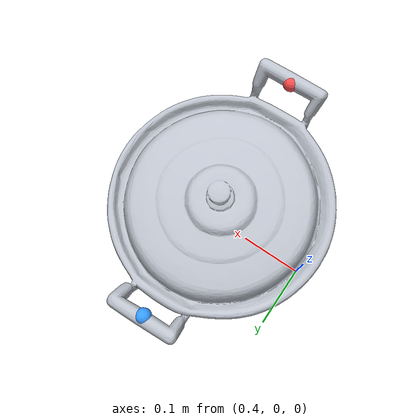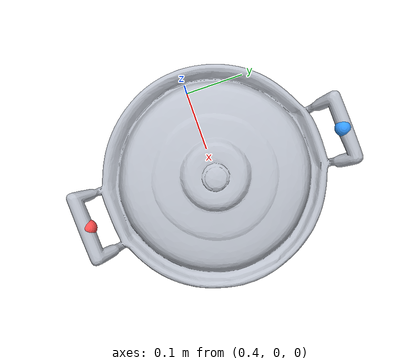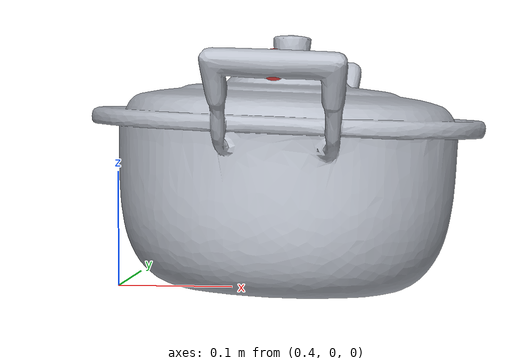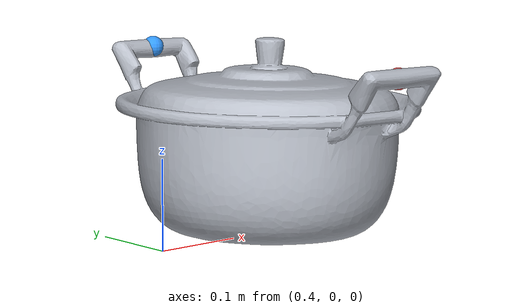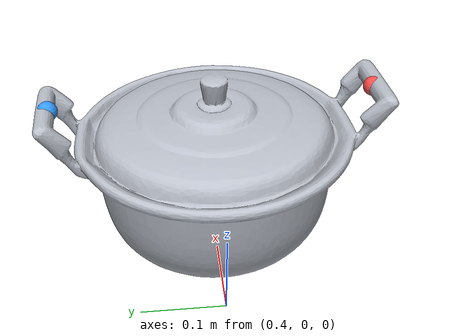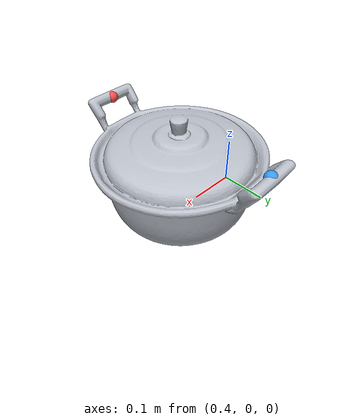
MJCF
<mujoco model="pot_m3">
  <!-- 자동 생성 파일 -- 직접 고치지 말 것.
       results/cocarry/gen_mass_variants.py 가 pot.xml 의 mass 를 x3 한 것이다.
       (pot_visual 의 mass="0" 은 시각 전용이라 그대로 둔다.) -->
  <asset>
    <mesh name="pot_mesh" file="pot.obj"/>
  </asset>

  <worldbody>
    <!-- quat 0.7071 0 0 0.7071 = +90 deg about z: the handles start along +-x in
         the mesh, this turns them to +-y so the left arm (y +0.3) and the right
         arm (y -0.3) each face one handle. -->
    <body name="pot" pos="0.55 0 0.12" quat="0.7071068 0 0 0.7071068">
      <freejoint name="pot_free"/>
      <geom name="pot_visual" type="mesh" mesh="pot_mesh" mass="0"
            contype="0" conaffinity="0" group="2" rgba="0.72 0.74 0.78 1"/>
      <geom name="pot_body_col" group="3" type="cylinder" size="0.145 0.070" pos="0 0 -0.050"
            mass="2.4" contype="1" conaffinity="1" rgba="1 0 0 0.25"/>
      <geom name="pot_lid_col" group="3" type="cylinder" size="0.152 0.018" pos="0 0 0.034"
            mass="0.3" contype="1" conaffinity="1" rgba="1 0 0 0.25"/>
      <geom name="pot_knob_col" group="3" type="sphere" size="0.020" pos="0 0 0.080"
            mass="0.06" contype="1" conaffinity="1" rgba="1 0 0 0.25"/>
      <geom name="pot_handle_l_bar" group="3" type="cylinder" size="0.020"
            fromto="0.1935 -0.0506 0.0697  0.1935 0.0598 0.0697"
            mass="0.09" contype="1" conaffinity="1" rgba="1 0 0 0.25"/>
      <geom name="pot_handle_l_leg1" group="3" type="cylinder" size="0.009"
            fromto="0.168 -0.0366 0.014  0.191 -0.0366 0.062"
            mass="0.015" contype="1" conaffinity="1" rgba="1 0 0 0.25"/>
      <geom name="pot_handle_l_leg2" group="3" type="cylinder" size="0.009"
            fromto="0.168 0.0466 0.014  0.191 0.0466 0.062"
            mass="0.015" contype="1" conaffinity="1" rgba="1 0 0 0.25"/>
      <geom name="pot_handle_r_bar" group="3" type="cylinder" size="0.020"
            fromto="-0.1957 -0.0639 0.0727  -0.1957 0.0463 0.0727"
            mass="0.09" contype="1" conaffinity="1" rgba="1 0 0 0.25"/>
      <geom name="pot_handle_r_leg1" group="3" type="cylinder" size="0.009"
            fromto="-0.168 -0.0496 0.014  -0.1881 -0.0496 0.062"
            mass="0.015" contype="1" conaffinity="1" rgba="1 0 0 0.25"/>
      <geom name="pot_handle_r_leg2" group="3" type="cylinder" size="0.009"
            fromto="-0.168 0.0352 0.014  -0.1881 0.0352 0.062"
            mass="0.015" contype="1" conaffinity="1" rgba="1 0 0 0.25"/>
      <!-- grasp sites: one per handle, named in the LEFT/RIGHT arm sense (after
           the +90 deg z rotation the +x handle faces +y = the left arm). -->
      <site name="pot_grasp_l"     pos="0.1935 0.0046 0.0697" xyaxes="0.643 0 -0.766  0 -1 0"
            size="0.008" rgba="0.2 0.6 1 1" group="0"/>
      <site name="pot_grasp_r"     pos="-0.1957 -0.0088 0.0727" xyaxes="-0.643 0 -0.766  0 1 0"
            size="0.008" rgba="1 0.3 0.3 1" group="0"/>
      <site name="pot_grasp_l_top" pos="0.1935 0.0046 0.0697" xyaxes="1 0 0  0 -1 0"
            size="0.006" rgba="0.2 0.6 1 0.4" group="0"/>
      <site name="pot_grasp_r_top" pos="-0.1957 -0.0088 0.0727" xyaxes="1 0 0  0 -1 0"
            size="0.006" rgba="1 0.3 0.3 0.4" group="0"/>
      <site name="pot_site"      pos="0 0 0"        size="0.010" rgba="0.2 1 0.4 1" group="0"/>
      <site name="pot_handle_l"  pos="0.1935 0.0046 0.0697" size="0.012" rgba="0.2 0.6 1 1" group="0"/>
      <site name="pot_handle_r"  pos="-0.1957 -0.0088 0.0727" size="0.012" rgba="1 0.3 0.3 1" group="0"/>
    </body>
  </worldbody>
</mujoco>
